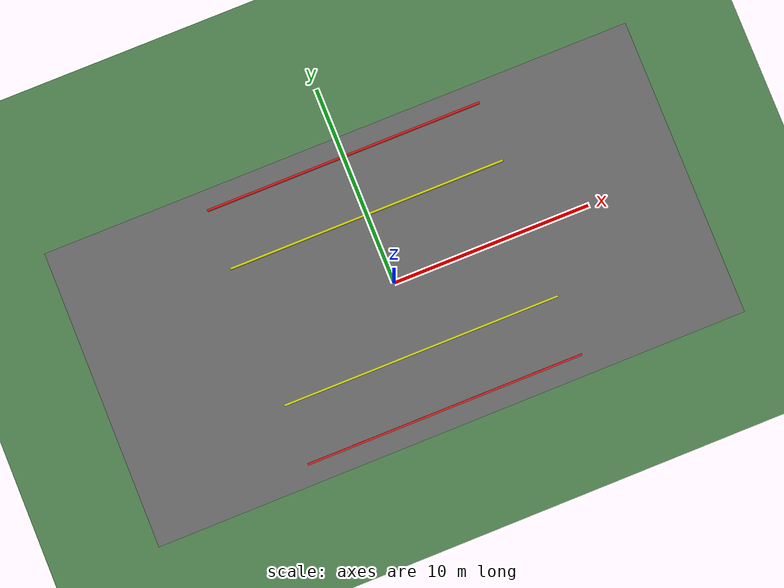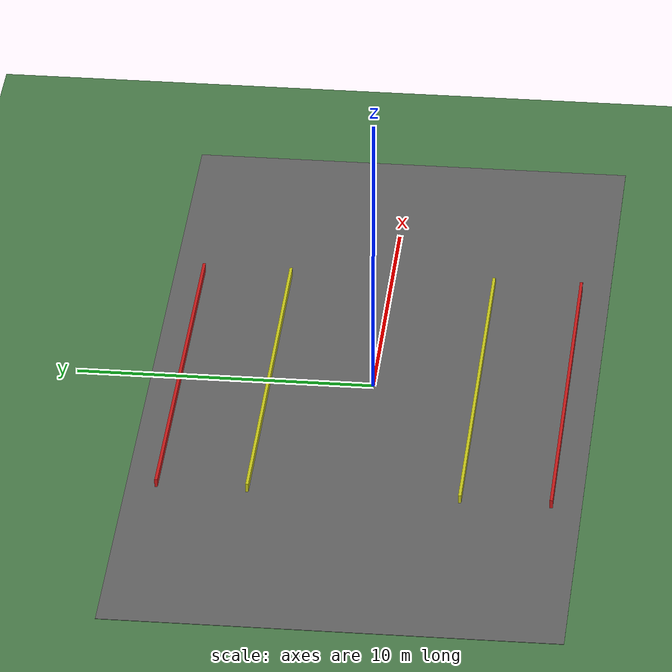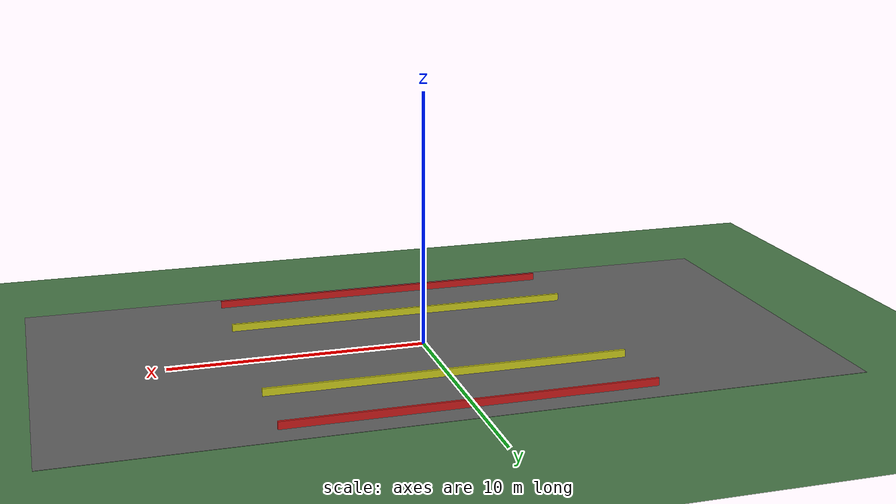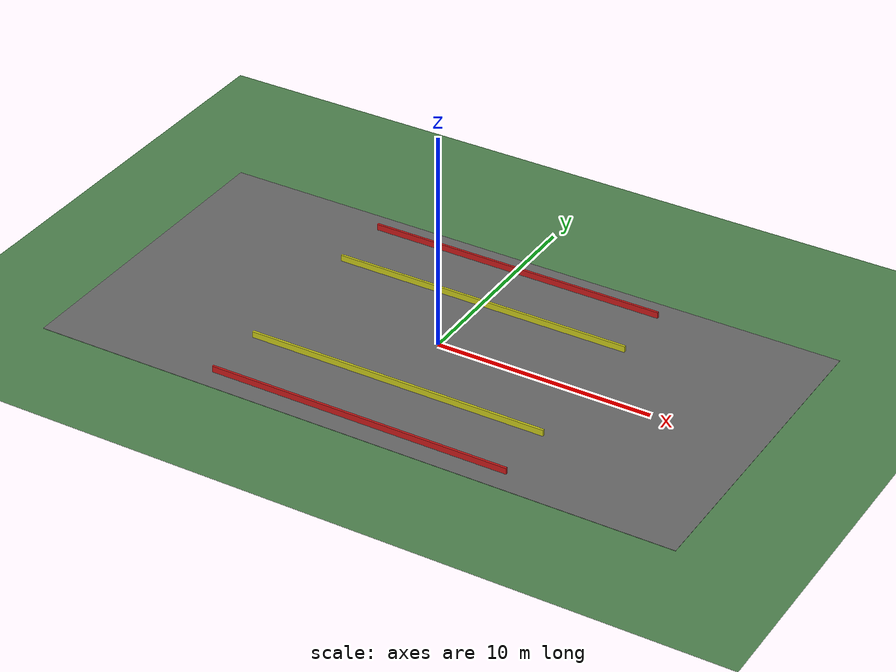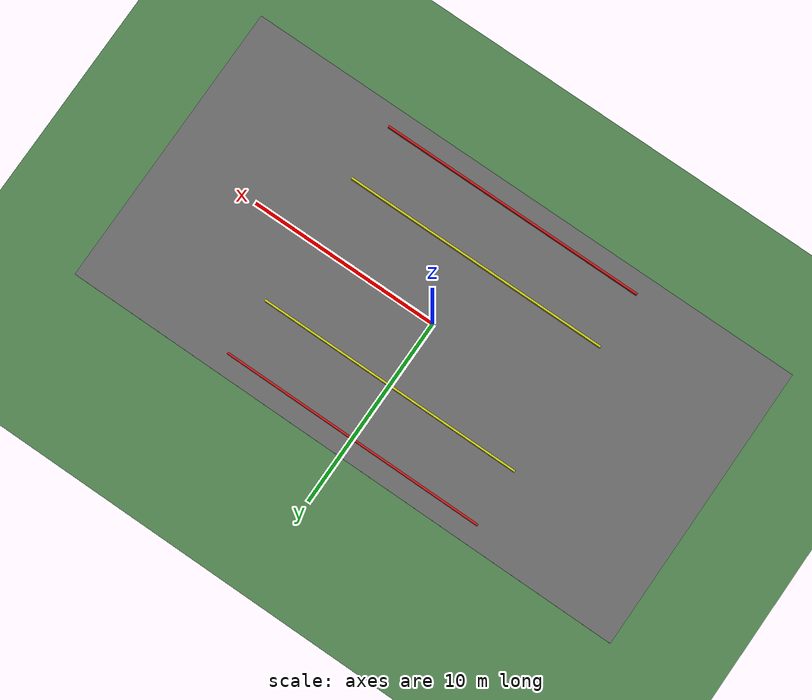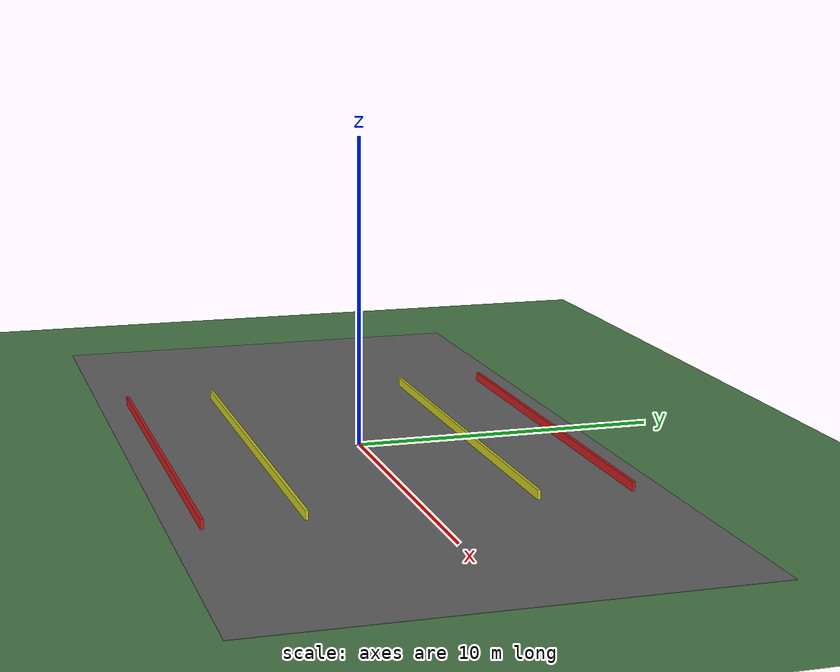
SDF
<sdf version="1.9">
 <world name="truggy_track">
  <physics name="1ms" type="ode">
   <max_step_size>0.001</max_step_size>
   <real_time_factor>1.0</real_time_factor>
  </physics>
  <light type="directional" name="sun">
   <pose>0 0 10 0 0 0</pose>
   <diffuse>1 1 1 1</diffuse>
   <specular>0.2 0.2 0.2 1</specular>
   <direction>-0.5 0.5 -0.9</direction>
  </light>
  <model name="ground_plane">
   <static>true</static>
   <link name="link">
    <collision name="collision">
     <geometry><plane><normal>0 0 1</normal><size>50 50</size></plane></geometry>
     <surface><friction><ode><mu>0.8</mu><mu2>0.8</mu2></ode></friction></surface>
    </collision>
    <visual name="visual">
     <geometry><plane><normal>0 0 1</normal><size>50 50</size></plane></geometry>
     <material><ambient>0.3 0.5 0.3 1</ambient><diffuse>0.3 0.5 0.3 1</diffuse></material>
    </visual>
   </link>
  </model>
  <model name="outer_wall_top">
   <static>true</static>
   <pose>0 6.5 0.15 0 0 0</pose>
   <link name="link">
    <collision name="col"><geometry><box><size>14 0.1 0.3</size></box></geometry></collision>
    <visual name="vis">
     <geometry><box><size>14 0.1 0.3</size></box></geometry>
     <material><ambient>0.8 0.1 0.1 1</ambient></material>
    </visual>
   </link>
  </model>
  <model name="outer_wall_bottom">
   <static>true</static>
   <pose>0 -6.5 0.15 0 0 0</pose>
   <link name="link">
    <collision name="col"><geometry><box><size>14 0.1 0.3</size></box></geometry></collision>
    <visual name="vis">
     <geometry><box><size>14 0.1 0.3</size></box></geometry>
     <material><ambient>0.8 0.1 0.1 1</ambient></material>
    </visual>
   </link>
  </model>
  <model name="inner_wall_top">
   <static>true</static>
   <pose>0 3.5 0.15 0 0 0</pose>
   <link name="link">
    <collision name="col"><geometry><box><size>14 0.1 0.3</size></box></geometry></collision>
    <visual name="vis">
     <geometry><box><size>14 0.1 0.3</size></box></geometry>
     <material><ambient>0.8 0.8 0.1 1</ambient></material>
    </visual>
   </link>
  </model>
  <model name="inner_wall_bottom">
   <static>true</static>
   <pose>0 -3.5 0.15 0 0 0</pose>
   <link name="link">
    <collision name="col"><geometry><box><size>14 0.1 0.3</size></box></geometry></collision>
    <visual name="vis">
     <geometry><box><size>14 0.1 0.3</size></box></geometry>
     <material><ambient>0.8 0.8 0.1 1</ambient></material>
    </visual>
   </link>
  </model>
  <model name="track_surface">
   <static>true</static>
   <pose>0 0 0.001 0 0 0</pose>
   <link name="link">
    <visual name="vis">
     <geometry><plane><normal>0 0 1</normal><size>30 15</size></plane></geometry>
     <material><ambient>0.4 0.4 0.4 1</ambient><diffuse>0.4 0.4 0.4 1</diffuse></material>
    </visual>
   </link>
  </model>
 </world>
</sdf>
